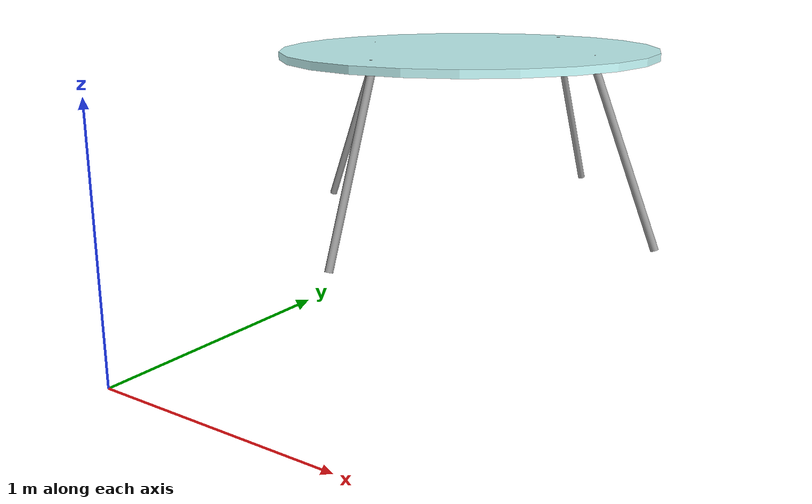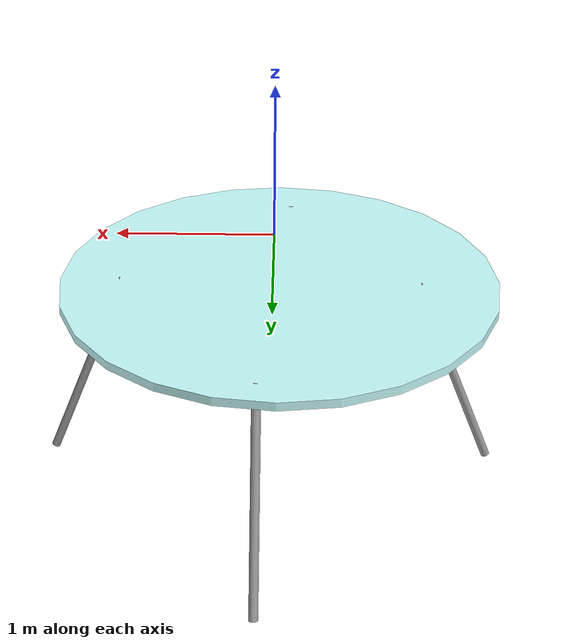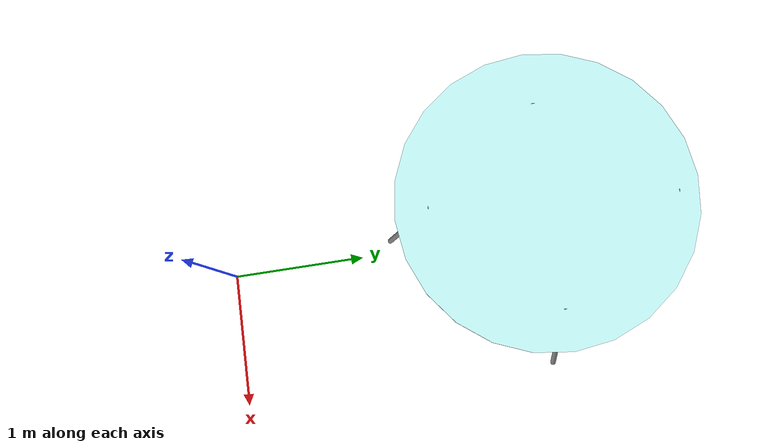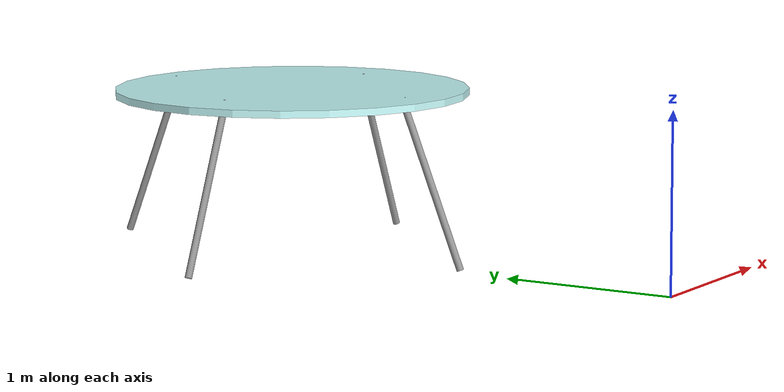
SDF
<?xml version='1.0'?>
<sdf version='1.7'>
  <model name='my_round_table'>
    <link name='link_0'>
      <inertial>
        <mass>1</mass>
        <inertia>
          <ixx>0.145833</ixx>
          <ixy>0</ixy>
          <ixz>0</ixz>
          <iyy>0.145833</iyy>
          <iyz>0</iyz>
          <izz>0.125</izz>
        </inertia>
        <pose>0 0 0 0 -0 0</pose>
      </inertial>
      <pose>-0.049932 2.36863 0.5 0 -0 0</pose>
      <gravity>1</gravity>
      <self_collide>0</self_collide>
      <kinematic>0</kinematic>
      <enable_wind>0</enable_wind>
      <visual name='visual'>
        <pose>0 0 0.45 0 -0 0</pose>
        <geometry>
          <cylinder>
            <radius>1</radius>
            <length>0.04</length>
          </cylinder>
        </geometry>
        <material>
          <lighting>1</lighting>
          <script>
            <uri>file://media/materials/scripts/gazebo.material</uri>
            <name>Gazebo/Grey</name>
          </script>
          <shader type='pixel'>
            <normal_map>__default__</normal_map>
          </shader>
          <ambient>0.79 1 1 1</ambient>
          <diffuse>0.79 1 1 1</diffuse>
          <specular>0.01 0.01 0.01 1</specular>
          <emissive>0 0 0 1</emissive>
        </material>
        <transparency>0</transparency>
        <cast_shadows>1</cast_shadows>
      </visual>
      <collision name='collision'>
        <laser_retro>0</laser_retro>
        <max_contacts>10</max_contacts>
        <pose>0 0 0.45 0 -0 0</pose>
        <geometry>
          <cylinder>
            <radius>1</radius>
            <length>0.04</length>
          </cylinder>
        </geometry>
        <surface>
          <friction>
            <ode>
              <mu>1</mu>
              <mu2>1</mu2>
              <fdir1>0 0 0</fdir1>
              <slip1>0</slip1>
              <slip2>0</slip2>
            </ode>
            <torsional>
              <coefficient>1</coefficient>
              <patch_radius>0</patch_radius>
              <surface_radius>0</surface_radius>
              <use_patch_radius>1</use_patch_radius>
              <ode>
                <slip>0</slip>
              </ode>
            </torsional>
          </friction>
          <bounce>
            <restitution_coefficient>0</restitution_coefficient>
            <threshold>1e+06</threshold>
          </bounce>
          <contact>
            <collide_without_contact>0</collide_without_contact>
            <collide_without_contact_bitmask>1</collide_without_contact_bitmask>
            <collide_bitmask>1</collide_bitmask>
            <ode>
              <soft_cfm>0</soft_cfm>
              <soft_erp>0.2</soft_erp>
              <kp>1e+13</kp>
              <kd>1</kd>
              <max_vel>0.01</max_vel>
              <min_depth>0</min_depth>
            </ode>
            <bullet>
              <split_impulse>1</split_impulse>
              <split_impulse_penetration_threshold>-0.01</split_impulse_penetration_threshold>
              <soft_cfm>0</soft_cfm>
              <soft_erp>0.2</soft_erp>
              <kp>1e+13</kp>
              <kd>1</kd>
            </bullet>
          </contact>
        </surface>
      </collision>
    </link>
    <link name='link_1_clone_1'>
      <inertial>
        <mass>1</mass>
        <inertia>
          <ixx>0.145833</ixx>
          <ixy>0</ixy>
          <ixz>0</ixz>
          <iyy>0.145833</iyy>
          <iyz>0</iyz>
          <izz>0.125</izz>
        </inertia>
        <pose>0 0 0 0 -0 0</pose>
      </inertial>
      <pose>-0.097659 1.42494 0.5 0 -0 0.018433</pose>
      <gravity>0</gravity>
      <self_collide>0</self_collide>
      <kinematic>0</kinematic>
      <enable_wind>0</enable_wind>
      <visual name='visual'>
        <pose>0 0 0 -0 0.38 1.5707</pose>
        <geometry>
          <cylinder>
            <radius>0.02</radius>
            <length>1</length>
          </cylinder>
        </geometry>
        <material>
          <lighting>1</lighting>
          <script>
            <uri>file://media/materials/scripts/gazebo.material</uri>
            <name>Gazebo/Grey</name>
          </script>
          <shader type='pixel'>
            <normal_map>__default__</normal_map>
          </shader>
          <ambient>0.5 0.5 0.5 1</ambient>
          <diffuse>0.8 0.8 0.8 1</diffuse>
          <specular>0.01 0.01 0.01 1</specular>
          <emissive>0 0 0 1</emissive>
        </material>
        <transparency>0</transparency>
        <cast_shadows>1</cast_shadows>
      </visual>
      <collision name='collision'>
        <laser_retro>0</laser_retro>
        <max_contacts>10</max_contacts>
        <pose>0 0 0 -0 0.38 1.5707</pose>
        <geometry>
          <cylinder>
            <radius>0.02</radius>
            <length>0.75</length>
          </cylinder>
        </geometry>
        <surface>
          <friction>
            <ode>
              <mu>1</mu>
              <mu2>1</mu2>
              <fdir1>0 0 0</fdir1>
              <slip1>0</slip1>
              <slip2>0</slip2>
            </ode>
            <torsional>
              <coefficient>1</coefficient>
              <patch_radius>0</patch_radius>
              <surface_radius>0</surface_radius>
              <use_patch_radius>1</use_patch_radius>
              <ode>
                <slip>0</slip>
              </ode>
            </torsional>
          </friction>
          <bounce>
            <restitution_coefficient>0</restitution_coefficient>
            <threshold>1e+06</threshold>
          </bounce>
          <contact>
            <collide_without_contact>0</collide_without_contact>
            <collide_without_contact_bitmask>1</collide_without_contact_bitmask>
            <collide_bitmask>1</collide_bitmask>
            <ode>
              <soft_cfm>0</soft_cfm>
              <soft_erp>0.2</soft_erp>
              <kp>1e+13</kp>
              <kd>1</kd>
              <max_vel>0.01</max_vel>
              <min_depth>0</min_depth>
            </ode>
            <bullet>
              <split_impulse>1</split_impulse>
              <split_impulse_penetration_threshold>-0.01</split_impulse_penetration_threshold>
              <soft_cfm>0</soft_cfm>
              <soft_erp>0.2</soft_erp>
              <kp>1e+13</kp>
              <kd>1</kd>
            </bullet>
          </contact>
        </surface>
      </collision>
    </link>
    <link name='link_1_clone_1_clone'>
      <inertial>
        <mass>1</mass>
        <inertia>
          <ixx>0.145833</ixx>
          <ixy>0</ixy>
          <ixz>0</ixz>
          <iyy>0.145833</iyy>
          <iyz>0</iyz>
          <izz>0.125</izz>
        </inertia>
        <pose>0 0 0 0 -0 0</pose>
      </inertial>
      <pose>-0.866699 2.38569 0.5 0 -0 0.003938</pose>
      <gravity>0</gravity>
      <self_collide>0</self_collide>
      <kinematic>0</kinematic>
      <enable_wind>0</enable_wind>
      <visual name='visual'>
        <pose>0 0 0 0 0.38 0</pose>
        <geometry>
          <cylinder>
            <radius>0.02</radius>
            <length>1</length>
          </cylinder>
        </geometry>
        <material>
          <lighting>1</lighting>
          <script>
            <uri>file://media/materials/scripts/gazebo.material</uri>
            <name>Gazebo/Grey</name>
          </script>
          <shader type='pixel'>
            <normal_map>__default__</normal_map>
          </shader>
          <ambient>0.5 0.5 0.5 1</ambient>
          <diffuse>0.8 0.8 0.8 1</diffuse>
          <specular>0.01 0.01 0.01 1</specular>
          <emissive>0 0 0 1</emissive>
        </material>
        <transparency>0</transparency>
        <cast_shadows>1</cast_shadows>
      </visual>
      <collision name='collision'>
        <laser_retro>0</laser_retro>
        <max_contacts>10</max_contacts>
        <pose>0 0 0 0 0.38 0</pose>
        <geometry>
          <cylinder>
            <radius>0.02</radius>
            <length>0.75</length>
          </cylinder>
        </geometry>
        <surface>
          <friction>
            <ode>
              <mu>1</mu>
              <mu2>1</mu2>
              <fdir1>0 0 0</fdir1>
              <slip1>0</slip1>
              <slip2>0</slip2>
            </ode>
            <torsional>
              <coefficient>1</coefficient>
              <patch_radius>0</patch_radius>
              <surface_radius>0</surface_radius>
              <use_patch_radius>1</use_patch_radius>
              <ode>
                <slip>0</slip>
              </ode>
            </torsional>
          </friction>
          <bounce>
            <restitution_coefficient>0</restitution_coefficient>
            <threshold>1e+06</threshold>
          </bounce>
          <contact>
            <collide_without_contact>0</collide_without_contact>
            <collide_without_contact_bitmask>1</collide_without_contact_bitmask>
            <collide_bitmask>1</collide_bitmask>
            <ode>
              <soft_cfm>0</soft_cfm>
              <soft_erp>0.2</soft_erp>
              <kp>1e+13</kp>
              <kd>1</kd>
              <max_vel>0.01</max_vel>
              <min_depth>0</min_depth>
            </ode>
            <bullet>
              <split_impulse>1</split_impulse>
              <split_impulse_penetration_threshold>-0.01</split_impulse_penetration_threshold>
              <soft_cfm>0</soft_cfm>
              <soft_erp>0.2</soft_erp>
              <kp>1e+13</kp>
              <kd>1</kd>
            </bullet>
          </contact>
        </surface>
      </collision>
    </link>
    <link name='link_1_clone_1_clone_clone'>
      <inertial>
        <mass>1</mass>
        <inertia>
          <ixx>0.145833</ixx>
          <ixy>0</ixy>
          <ixz>0</ixz>
          <iyy>0.145833</iyy>
          <iyz>0</iyz>
          <izz>0.125</izz>
        </inertia>
        <pose>0 0 0 0 -0 0</pose>
      </inertial>
      <pose>0.03563 3.39885 0.5 0 0 -1.58247</pose>
      <gravity>0</gravity>
      <self_collide>0</self_collide>
      <kinematic>0</kinematic>
      <enable_wind>0</enable_wind>
      <visual name='visual'>
        <pose>0 0 0 0 0.38 0</pose>
        <geometry>
          <cylinder>
            <radius>0.02</radius>
            <length>1</length>
          </cylinder>
        </geometry>
        <material>
          <lighting>1</lighting>
          <script>
            <uri>file://media/materials/scripts/gazebo.material</uri>
            <name>Gazebo/Grey</name>
          </script>
          <shader type='pixel'>
            <normal_map>__default__</normal_map>
          </shader>
          <ambient>0.5 0.5 0.5 1</ambient>
          <diffuse>0.8 0.8 0.8 1</diffuse>
          <specular>0.01 0.01 0.01 1</specular>
          <emissive>0 0 0 1</emissive>
        </material>
        <transparency>0</transparency>
        <cast_shadows>1</cast_shadows>
      </visual>
      <collision name='collision'>
        <laser_retro>0</laser_retro>
        <max_contacts>10</max_contacts>
        <pose>0 0 0 0 0.38 0</pose>
        <geometry>
          <cylinder>
            <radius>0.02</radius>
            <length>0.75</length>
          </cylinder>
        </geometry>
        <surface>
          <friction>
            <ode>
              <mu>1</mu>
              <mu2>1</mu2>
              <fdir1>0 0 0</fdir1>
              <slip1>0</slip1>
              <slip2>0</slip2>
            </ode>
            <torsional>
              <coefficient>1</coefficient>
              <patch_radius>0</patch_radius>
              <surface_radius>0</surface_radius>
              <use_patch_radius>1</use_patch_radius>
              <ode>
                <slip>0</slip>
              </ode>
            </torsional>
          </friction>
          <bounce>
            <restitution_coefficient>0</restitution_coefficient>
            <threshold>1e+06</threshold>
          </bounce>
          <contact>
            <collide_without_contact>0</collide_without_contact>
            <collide_without_contact_bitmask>1</collide_without_contact_bitmask>
            <collide_bitmask>1</collide_bitmask>
            <ode>
              <soft_cfm>0</soft_cfm>
              <soft_erp>0.2</soft_erp>
              <kp>1e+13</kp>
              <kd>1</kd>
              <max_vel>0.01</max_vel>
              <min_depth>0</min_depth>
            </ode>
            <bullet>
              <split_impulse>1</split_impulse>
              <split_impulse_penetration_threshold>-0.01</split_impulse_penetration_threshold>
              <soft_cfm>0</soft_cfm>
              <soft_erp>0.2</soft_erp>
              <kp>1e+13</kp>
              <kd>1</kd>
            </bullet>
          </contact>
        </surface>
      </collision>
    </link>
    <link name='link_1_clone_1_clone_clone_0'>
      <inertial>
        <mass>1</mass>
        <inertia>
          <ixx>0.145833</ixx>
          <ixy>0</ixy>
          <ixz>0</ixz>
          <iyy>0.145833</iyy>
          <iyz>0</iyz>
          <izz>0.125</izz>
        </inertia>
        <pose>0 0 0 0 -0 0</pose>
      </inertial>
      <pose>0.848604 2.35263 0.5 0 -0 3.11403</pose>
      <gravity>0</gravity>
      <self_collide>0</self_collide>
      <kinematic>0</kinematic>
      <enable_wind>0</enable_wind>
      <visual name='visual'>
        <pose>0 0 0 0 0.38 0</pose>
        <geometry>
          <cylinder>
            <radius>0.02</radius>
            <length>1</length>
          </cylinder>
        </geometry>
        <material>
          <lighting>1</lighting>
          <script>
            <uri>file://media/materials/scripts/gazebo.material</uri>
            <name>Gazebo/Grey</name>
          </script>
          <shader type='pixel'>
            <normal_map>__default__</normal_map>
          </shader>
          <ambient>0.5 0.5 0.5 1</ambient>
          <diffuse>0.8 0.8 0.8 1</diffuse>
          <specular>0.01 0.01 0.01 1</specular>
          <emissive>0 0 0 1</emissive>
        </material>
        <transparency>0</transparency>
        <cast_shadows>1</cast_shadows>
      </visual>
      <collision name='collision'>
        <laser_retro>0</laser_retro>
        <max_contacts>10</max_contacts>
        <pose>0 0 0 0 0.38 0</pose>
        <geometry>
          <cylinder>
            <radius>0.02</radius>
            <length>0.75</length>
          </cylinder>
        </geometry>
        <surface>
          <friction>
            <ode>
              <mu>1</mu>
              <mu2>1</mu2>
              <fdir1>0 0 0</fdir1>
              <slip1>0</slip1>
              <slip2>0</slip2>
            </ode>
            <torsional>
              <coefficient>1</coefficient>
              <patch_radius>0</patch_radius>
              <surface_radius>0</surface_radius>
              <use_patch_radius>1</use_patch_radius>
              <ode>
                <slip>0</slip>
              </ode>
            </torsional>
          </friction>
          <bounce>
            <restitution_coefficient>0</restitution_coefficient>
            <threshold>1e+06</threshold>
          </bounce>
          <contact>
            <collide_without_contact>0</collide_without_contact>
            <collide_without_contact_bitmask>1</collide_without_contact_bitmask>
            <collide_bitmask>1</collide_bitmask>
            <ode>
              <soft_cfm>0</soft_cfm>
              <soft_erp>0.2</soft_erp>
              <kp>1e+13</kp>
              <kd>1</kd>
              <max_vel>0.01</max_vel>
              <min_depth>0</min_depth>
            </ode>
            <bullet>
              <split_impulse>1</split_impulse>
              <split_impulse_penetration_threshold>-0.01</split_impulse_penetration_threshold>
              <soft_cfm>0</soft_cfm>
              <soft_erp>0.2</soft_erp>
              <kp>1e+13</kp>
              <kd>1</kd>
            </bullet>
          </contact>
        </surface>
      </collision>
    </link>
    <static>1</static>
    <allow_auto_disable>1</allow_auto_disable>
  </model>
</sdf>
